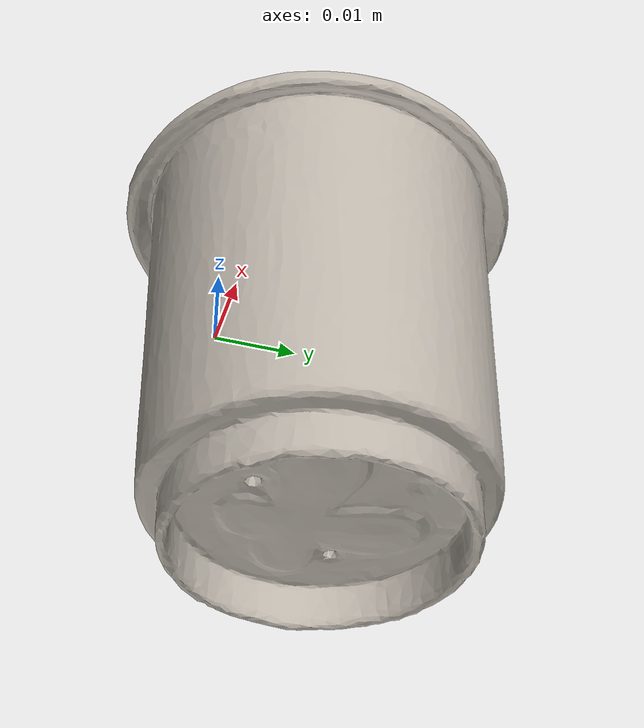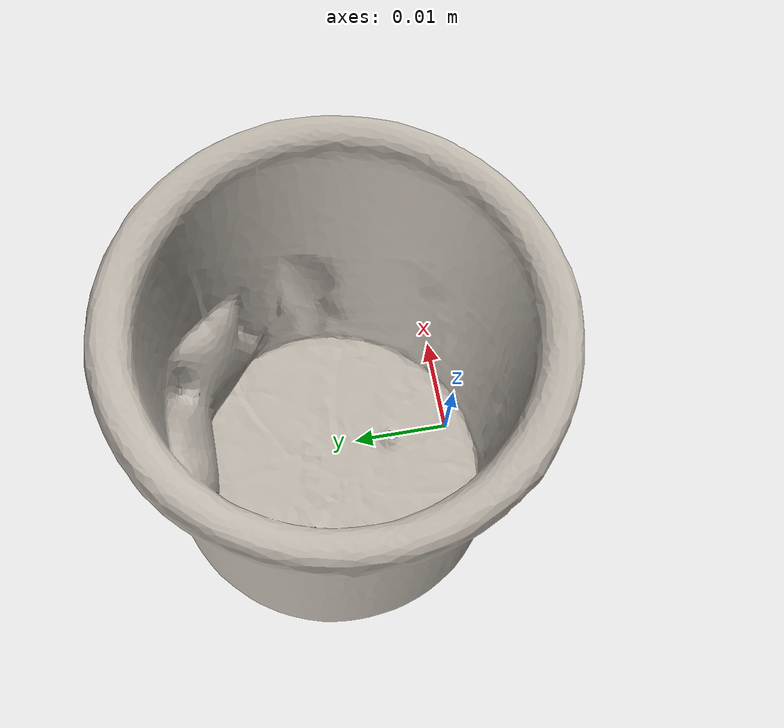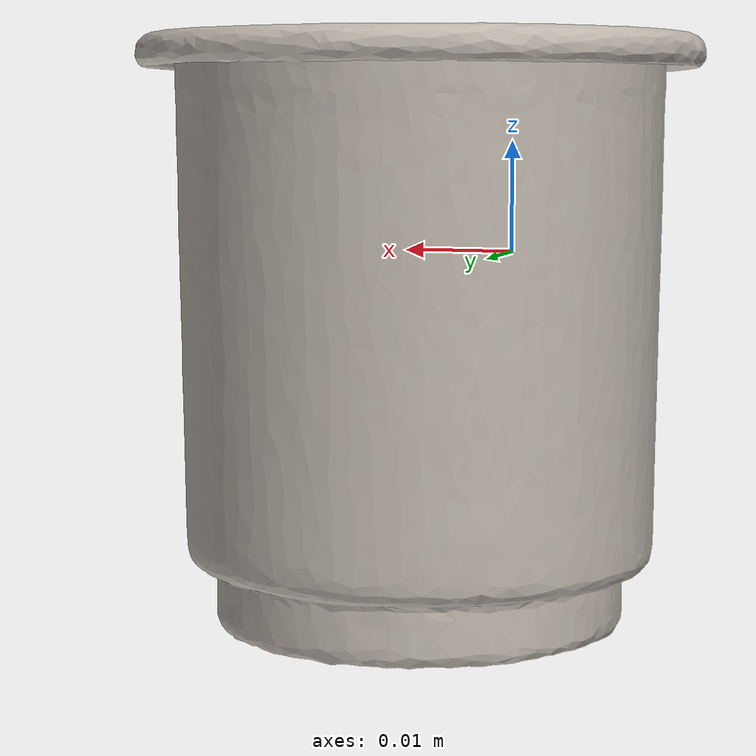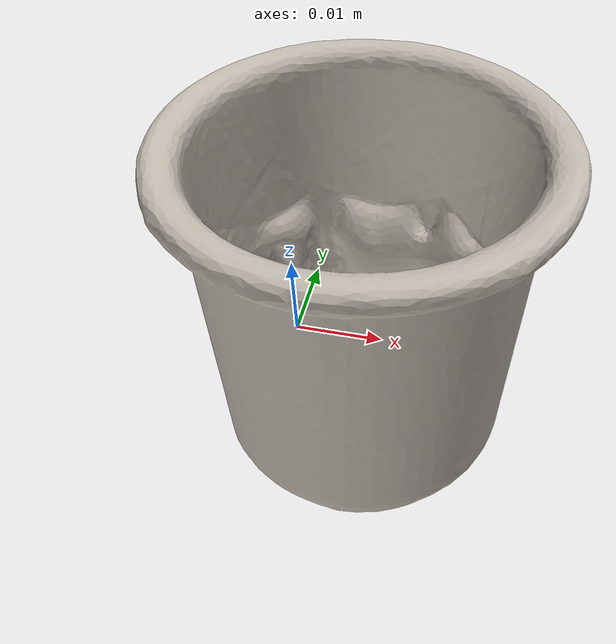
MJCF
<mujoco model="bread">
  <asset>
    <mesh file="nontextured.stl" name="obj_mesh" scale="0.8 0.8 0.8"/>
    <texture file="../../../../../textures/bread.png" type="2d" name="tex-bread" />
    <material name="bread" reflectance="0.7" texrepeat="15 15" texture="tex-bread" texuniform="true"/>
  </asset>
  <worldbody>
    <body>
      <body name="collision">
        <geom pos="0.0277805 0.056372000000000005 -0.0313585" mesh="obj_mesh" type="mesh" solimp="0.998 0.998 0.001" solref="0.001 1" density="50" friction="0.95 0.3 0.1"  material="bread" group="1" condim="4"/>
      </body>
      <body name="visual">
        <geom pos="0.0277805 0.056372000000000005 -0.0313585" mesh="obj_mesh" type="mesh" material="bread"  conaffinity="0" contype="0"  group="0" mass="0.0001"/>
        <geom pos="0.0277805 0.056372000000000005 -0.0313585" mesh="obj_mesh" type="mesh" material="bread"  conaffinity="0" contype="0"  group="1" mass="0.0001"/>
      </body>
      <site rgba="0 0 0 0" size="0.005" pos="0 0 -0.0319825" name="bottom_site"/>
      <site rgba="0 0 0 0" size="0.005" pos="0 0 0.0319825" name="top_site"/>
      <site rgba="0 0 0 0" size="0.005" pos="0.0304795 0.030472000000000003 0.0319825" name="horizontal_radius_site"/>
    </body>
  </worldbody>
</mujoco>
